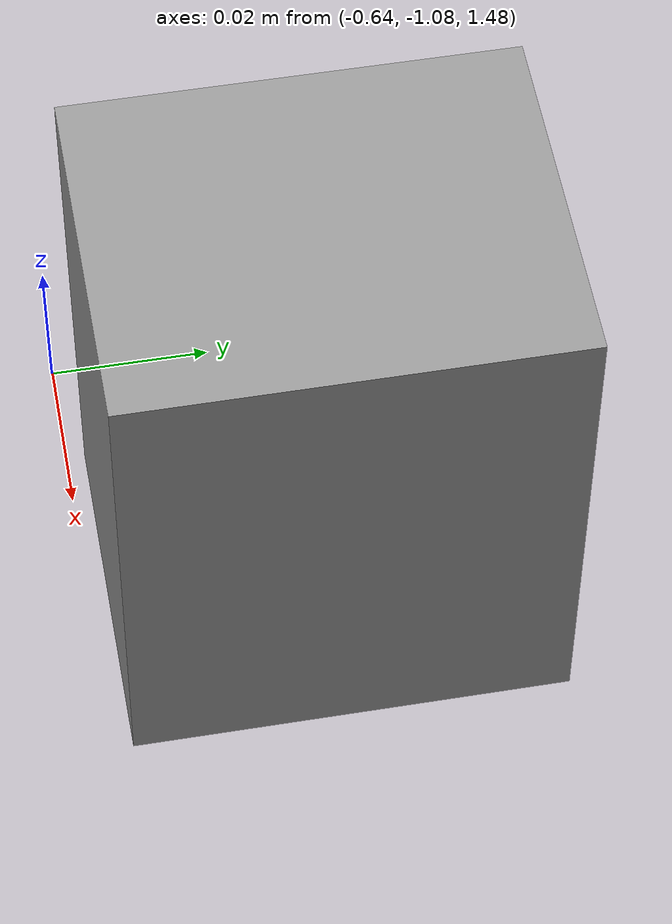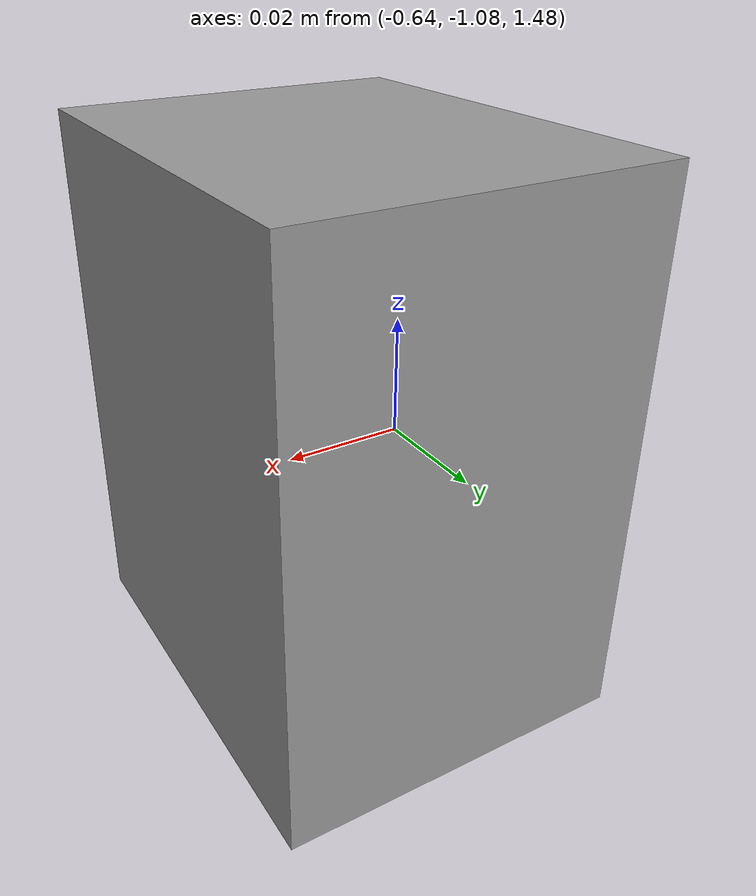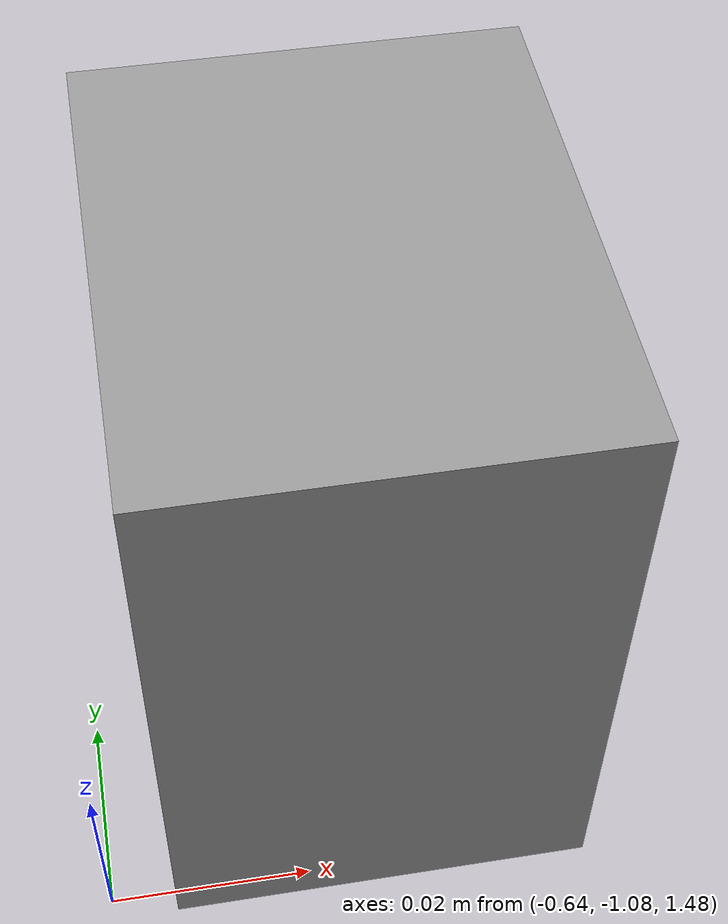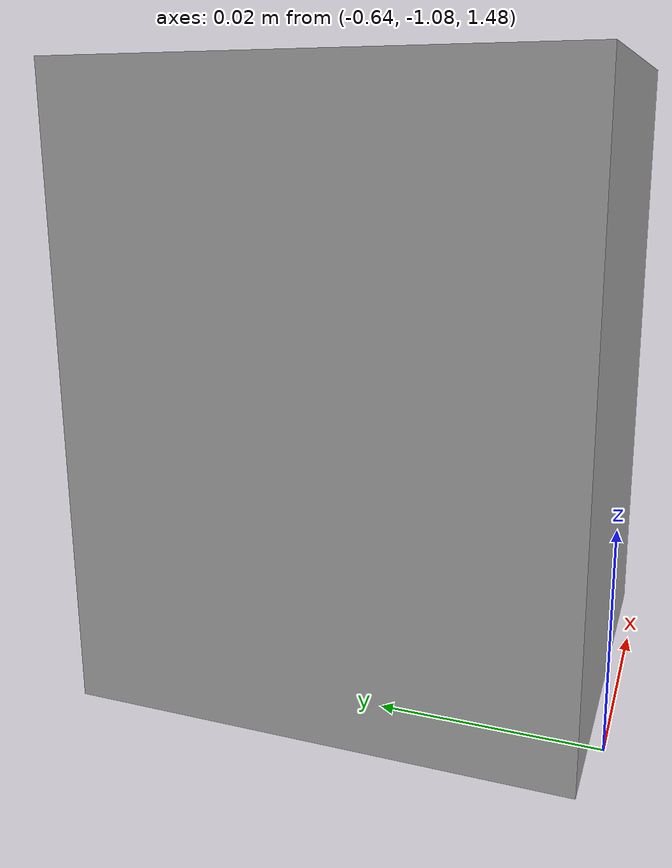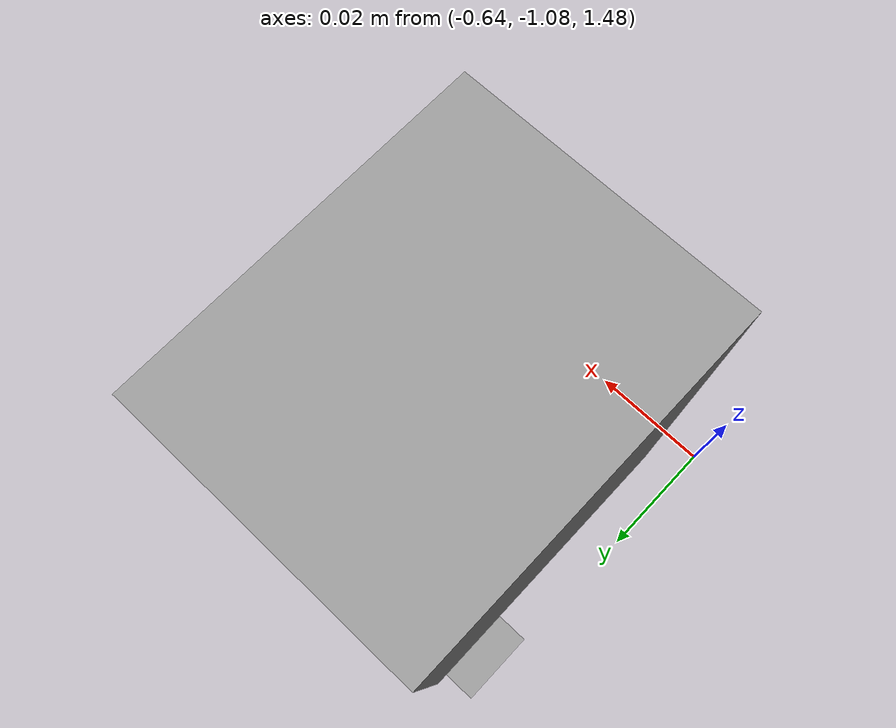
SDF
<?xml version="1.0" ?>
<sdf version="1.4">

  <world name="default">

    <include>
      <uri>model://ground_plane</uri>
    </include>

    <!-- Global light source -->
    <include>
      <uri>model://sun</uri>
    </include>

    <!-- Focus camera on tall pendulum -->
    <gui fullscreen='0'>
      <camera name='user_camera'>
        <pose>4.927360 -4.376610 3.740080 0.000000 0.275643 2.356190</pose>
        <view_controller>orbit</view_controller>
      </camera>
    </gui>

    <!-- Add an object -->
     <include>
       <uri>model://BasePlasticBox</uri>
       <pose>-0.61164 -1.05 0.504 0 0 0</pose>
     </include>

    <!-- Add an object -->
     <include>
       <uri>model://PlasticBoxObjectStyrofoam</uri>
       <pose>-0.61164 -1.05 1.504 0 0 0</pose>
     </include>

  </world>
</sdf>

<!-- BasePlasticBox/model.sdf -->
<sdf version='1.7'>
  <model name='BasePlasticBox'>
    <link name='link'>
      <inertial>
        <mass>10000</mass>
        <inertia>
          <ixx>630.491</ixx>
          <ixy>0</ixy>
          <ixz>0</ixz>
          <iyy>854.855</iyy>
          <iyz>0</iyz>
          <izz>1442.3</izz>
        </inertia>
        <pose>0 0 0 0 -0 0</pose>
      </inertial>
      <self_collide>0</self_collide>
      <enable_wind>0</enable_wind>
      <kinematic>0</kinematic>
      <pose>0 0 0 0 -0 0</pose>
      <gravity>1</gravity>
      <visual name='visual'>
        <geometry>
          <box>
            <size>1 0.854847 0.160703</size>
          </box>
        </geometry>
        <material>
          <script>
            <name>Gazebo/Grey</name>
            <uri>file://media/materials/scripts/gazebo.material</uri>
          </script>
          <shader type='pixel'>
            <normal_map>__default__</normal_map>
          </shader>
        </material>
        <pose>0 0 0 0 -0 0</pose>
        <transparency>0</transparency>
        <cast_shadows>1</cast_shadows>
      </visual>
      <collision name='collision'>
        <laser_retro>0</laser_retro>
        <max_contacts>10</max_contacts>
        <pose>0 0 0 0 -0 0</pose>
        <geometry>
          <box>
            <size>1 0.854847 0.160703</size>
          </box>
        </geometry>
        <surface>
          <friction>
            <ode>
              <mu>1</mu>
              <mu2>1</mu2>
              <fdir1>0 0 0</fdir1>
              <slip1>0</slip1>
              <slip2>0</slip2>
            </ode>
            <torsional>
              <coefficient>1</coefficient>
              <patch_radius>0</patch_radius>
              <surface_radius>0</surface_radius>
              <use_patch_radius>1</use_patch_radius>
              <ode>
                <slip>0</slip>
              </ode>
            </torsional>
          </friction>
          <bounce>
            <restitution_coefficient>0</restitution_coefficient>
            <threshold>1e+06</threshold>
          </bounce>
          <contact>
            <collide_without_contact>0</collide_without_contact>
            <collide_without_contact_bitmask>1</collide_without_contact_bitmask>
            <collide_bitmask>1</collide_bitmask>
            <ode>
              <soft_cfm>0</soft_cfm>
              <soft_erp>0.2</soft_erp>
              <kp>1e+13</kp>
              <kd>1</kd>
              <max_vel>0.01</max_vel>
              <min_depth>0</min_depth>
            </ode>
            <bullet>
              <split_impulse>1</split_impulse>
              <split_impulse_penetration_threshold>-0.01</split_impulse_penetration_threshold>
              <soft_cfm>0</soft_cfm>
              <soft_erp>0.2</soft_erp>
              <kp>1e+13</kp>
              <kd>1</kd>
            </bullet>
          </contact>
        </surface>
      </collision>
    </link>
    <static>0</static>
    <allow_auto_disable>1</allow_auto_disable>
  </model>
</sdf>

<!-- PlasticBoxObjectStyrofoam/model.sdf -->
<sdf version='1.7'>
  <model name='PlasticBoxObjectStyrofoam'>
    <link name='link'>
      <inertial>
        <mass>0.0122568</mass>
        <inertia>
          <ixx>7.73e-06</ixx>
          <ixy>0</ixy>
          <ixz>0</ixz>
          <iyy>6.72e-06</iyy>
          <iyz>0</iyz>
          <izz>5.02e-06</izz>
        </inertia>
        <pose>0 0 0 0 -0 0</pose>
      </inertial>
      <self_collide>0</self_collide>
      <enable_wind>0</enable_wind>
      <kinematic>0</kinematic>
      <pose>0 0 0 0 -0 0</pose>
      <gravity>1</gravity>
      <visual name='visual'>
        <geometry>
          <box>
            <size>0.044255 0.054337 0.067961</size>
          </box>
        </geometry>
        <material>
          <script>
            <name>Gazebo/Grey</name>
            <uri>file://media/materials/scripts/gazebo.material</uri>
          </script>
          <shader type='pixel'>
            <normal_map>__default__</normal_map>
          </shader>
          <ambient>0.3 0.3 0.3 1</ambient>
          <diffuse>0.7 0.7 0.7 1</diffuse>
          <specular>0.01 0.01 0.01 1</specular>
          <emissive>0 0 0 1</emissive>
        </material>
        <pose>0 0 0 0 -0 0</pose>
        <transparency>0</transparency>
        <cast_shadows>1</cast_shadows>
      </visual>
      <collision name='collision'>
        <laser_retro>0</laser_retro>
        <max_contacts>10</max_contacts>
        <pose>0 0 0 0 -0 0</pose>
        <geometry>
          <box>
            <size>0.044255 0.054337 0.067961</size>
          </box>
        </geometry>
        <surface>
          <friction>
            <ode>
              <mu>1</mu>
              <mu2>1</mu2>
              <fdir1>0 0 0</fdir1>
              <slip1>0</slip1>
              <slip2>0</slip2>
            </ode>
            <torsional>
              <coefficient>1</coefficient>
              <patch_radius>0</patch_radius>
              <surface_radius>0</surface_radius>
              <use_patch_radius>1</use_patch_radius>
              <ode>
                <slip>0</slip>
              </ode>
            </torsional>
          </friction>
          <bounce>
            <restitution_coefficient>0</restitution_coefficient>
            <threshold>1e+06</threshold>
          </bounce>
          <contact>
            <collide_without_contact>0</collide_without_contact>
            <collide_without_contact_bitmask>1</collide_without_contact_bitmask>
            <collide_bitmask>1</collide_bitmask>
            <ode>
              <soft_cfm>0</soft_cfm>
              <soft_erp>0.2</soft_erp>
              <kp>1e+13</kp>
              <kd>1</kd>
              <max_vel>0.01</max_vel>
              <min_depth>0</min_depth>
            </ode>
            <bullet>
              <split_impulse>1</split_impulse>
              <split_impulse_penetration_threshold>-0.01</split_impulse_penetration_threshold>
              <soft_cfm>0</soft_cfm>
              <soft_erp>0.2</soft_erp>
              <kp>1e+13</kp>
              <kd>1</kd>
            </bullet>
          </contact>
        </surface>
      </collision>
    </link>
    <static>0</static>
    <allow_auto_disable>1</allow_auto_disable>
  </model>
</sdf>
